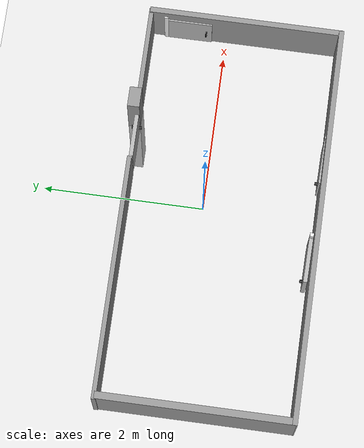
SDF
<sdf version="1.7">
 <world name="room-6-doors">
  <light name="sun" type="directional">
   <pose>0 0 10 0 -0 0</pose>
   <diffuse>0.8 0.8 0.8 1</diffuse>
   <specular>0.2 0.2 0.2 1</specular>
   <attenuation>
    <range>1000</range>
    <constant>0.9</constant>
    <linear>0.01</linear>
    <quadratic>0.001</quadratic>
   </attenuation>
   <direction>-0.5 0.1 -0.9</direction>
   <spot><inner_angle>0</inner_angle><outer_angle>0</outer_angle><falloff>0</falloff></spot>
  </light>
  <model name="ground_plane">
   <static>1</static>
   <link name="link">
    <collision name="collision">
     <geometry><plane><normal>0 0 1</normal><size>100 100</size></plane></geometry>
     <surface>
      <contact><collide_bitmask>65535</collide_bitmask></contact>
      <friction><ode><mu>100</mu><mu2>50</mu2></ode></friction>
     </surface>
    </collision>
    <visual name="visual">
     <cast_shadows>0</cast_shadows>
     <geometry><plane><normal>0 0 1</normal><size>100 100</size></plane></geometry>
     <material>
      <script><uri>file://media/materials/scripts/gazebo.material</uri><name>Gazebo/Grey</name></script>
     </material>
    </visual>
   </link>
  </model>
  <physics type="ode">
   <real_time_update_rate>1000</real_time_update_rate>
   <max_step_size>0.001</max_step_size>
   <real_time_factor>1</real_time_factor>
   <ode>
    <solver>
     <type>quick</type>
     <iters>150</iters>
     <precon_iters>0</precon_iters>
     <sor>1.4</sor>
     <use_dynamic_moi_rescaling>1</use_dynamic_moi_rescaling>
    </solver>
    <constraints>
     <cfm>1e-05</cfm>
     <erp>0.2</erp>
     <contact_max_correcting_vel>2000</contact_max_correcting_vel>
     <contact_surface_layer>0.01</contact_surface_layer>
    </constraints>
   </ode>
  </physics>
  <model name="room-d">
   <link name="link_1">
    <inertial>
     <mass>0.125423</mass>
     <inertia>
      <ixx>0.00613653</ixx>
      <ixy>0</ixy>
      <ixz>0</ixz>
      <iyy>0.100576</iyy>
      <iyz>0</iyz>
      <izz>0.0945024</izz>
     </inertia>
    </inertial>
    <pose>-1.175 0.95466 -0.024889 0 -0 0</pose>
    <gravity>0</gravity>
    <visual name="visual">
     <geometry><box><size>3.00643 0.054903 0.764268</size></box></geometry>
     <material>
      <lighting>1</lighting>
      <script><uri>file://media/materials/scripts/gazebo.material</uri><name>Gazebo/Grey</name></script>
      <shader type="pixel"><normal_map>__default__</normal_map></shader>
     </material>
    </visual>
    <collision name="collision">
     <geometry><box><size>3.00643 0.054903 0.764268</size></box></geometry>
     <surface>
      <friction>
       <ode><mu>1</mu><mu2>1</mu2><fdir1>0 0 0</fdir1><slip1>0</slip1><slip2>0</slip2></ode>
       <torsional>
        <coefficient>1</coefficient>
        <patch_radius>0</patch_radius>
        <surface_radius>0</surface_radius>
        <use_patch_radius>1</use_patch_radius>
        <ode><slip>0</slip></ode>
       </torsional>
      </friction>
      <bounce><restitution_coefficient>0</restitution_coefficient><threshold>1e+06</threshold></bounce>
      <contact>
       <collide_bitmask>16</collide_bitmask>
       <ode>
        <soft_cfm>0</soft_cfm>
        <soft_erp>0.2</soft_erp>
        <kp>1e+13</kp>
        <kd>1</kd>
        <max_vel>0.01</max_vel>
        <min_depth>0</min_depth>
       </ode>
       <bullet>
        <split_impulse>1</split_impulse>
        <split_impulse_penetration_threshold>-0.01</split_impulse_penetration_threshold>
        <soft_cfm>0</soft_cfm>
        <soft_erp>0.2</soft_erp>
        <kp>1e+13</kp>
        <kd>1</kd>
       </bullet>
      </contact>
     </surface>
    </collision>
   </link>
   <link name="link_2">
    <inertial>
     <mass>0.0462245</mass>
     <inertia>
      <ixx>0.00191101</ixx>
      <ixy>0</ixy>
      <ixz>0</ixz>
      <iyy>0.00744204</iyy>
      <iyz>0</iyz>
      <izz>0.00555423</izz>
     </inertia>
    </inertial>
    <pose>1.69085 0.952934 -0.055322 0 -0 0</pose>
    <visual name="visual">
     <geometry><box><size>1.19953 0.054866 0.702206</size></box></geometry>
     <material>
      <lighting>1</lighting>
      <script><uri>file://media/materials/scripts/gazebo.material</uri><name>Gazebo/Grey</name></script>
      <shader type="pixel"/>
     </material>
    </visual>
    <collision name="collision">
     <geometry><box><size>1.19953 0.054866 0.702206</size></box></geometry>
     <surface>
      <friction>
       <ode><mu>1</mu><mu2>1</mu2><fdir1>0 0 0</fdir1><slip1>0</slip1><slip2>0</slip2></ode>
       <torsional>
        <coefficient>1</coefficient>
        <patch_radius>0</patch_radius>
        <surface_radius>0</surface_radius>
        <use_patch_radius>1</use_patch_radius>
        <ode><slip>0</slip></ode>
       </torsional>
      </friction>
      <bounce><restitution_coefficient>0</restitution_coefficient><threshold>1e+06</threshold></bounce>
      <contact>
       <collide_bitmask>16</collide_bitmask>
       <ode>
        <soft_cfm>0</soft_cfm>
        <soft_erp>0.2</soft_erp>
        <kp>1e+13</kp>
        <kd>1</kd>
        <max_vel>0.01</max_vel>
        <min_depth>0</min_depth>
       </ode>
       <bullet>
        <split_impulse>1</split_impulse>
        <split_impulse_penetration_threshold>-0.01</split_impulse_penetration_threshold>
        <soft_cfm>0</soft_cfm>
        <soft_erp>0.2</soft_erp>
        <kp>1e+13</kp>
        <kd>1</kd>
       </bullet>
      </contact>
     </surface>
    </collision>
   </link>
   <link name="link_4">
    <inertial>
     <mass>0.119228</mass>
     <inertia>
      <ixx>0.0635032</ixx>
      <ixy>0</ixy>
      <ixz>0</ixz>
      <iyy>0.0053794</iyy>
      <iyz>0</iyz>
      <izz>0.0582137</izz>
     </inertia>
    </inertial>
    <pose>2.26979 -0.239646 -0.040087 0 -0 0</pose>
    <visual name="visual">
     <geometry><box><size>0.067282 2.41962 0.732733</size></box></geometry>
     <material>
      <lighting>1</lighting>
      <script><uri>file://media/materials/scripts/gazebo.material</uri><name>Gazebo/Grey</name></script>
      <shader type="pixel"/>
     </material>
    </visual>
    <collision name="collision">
     <geometry><box><size>0.067282 2.41962 0.732733</size></box></geometry>
     <surface>
      <friction>
       <ode><mu>1</mu><mu2>1</mu2><fdir1>0 0 0</fdir1><slip1>0</slip1><slip2>0</slip2></ode>
       <torsional>
        <coefficient>1</coefficient>
        <patch_radius>0</patch_radius>
        <surface_radius>0</surface_radius>
        <use_patch_radius>1</use_patch_radius>
        <ode><slip>0</slip></ode>
       </torsional>
      </friction>
      <bounce><restitution_coefficient>0</restitution_coefficient><threshold>1e+06</threshold></bounce>
      <contact>
       <collide_bitmask>16</collide_bitmask>
       <ode>
        <soft_cfm>0</soft_cfm>
        <soft_erp>0.2</soft_erp>
        <kp>1e+13</kp>
        <kd>1</kd>
        <max_vel>0.01</max_vel>
        <min_depth>0</min_depth>
       </ode>
       <bullet>
        <split_impulse>1</split_impulse>
        <split_impulse_penetration_threshold>-0.01</split_impulse_penetration_threshold>
        <soft_cfm>0</soft_cfm>
        <soft_erp>0.2</soft_erp>
        <kp>1e+13</kp>
        <kd>1</kd>
       </bullet>
      </contact>
     </surface>
    </collision>
   </link>
   <link name="link_5">
    <inertial>
     <mass>0.239127</mass>
     <inertia>
      <ixx>0.0121759</ixx>
      <ixy>0</ixy>
      <ixz>0</ixz>
      <iyy>0.500678</iyy>
      <iyz>0</iyz>
      <izz>0.488656</izz>
     </inertia>
    </inertial>
    <pose>-0.192505 -1.42291 -0.023103 0 -0 0</pose>
    <visual name="visual">
     <geometry><box><size>4.95158 0.062118 0.779203</size></box></geometry>
     <material>
      <lighting>1</lighting>
      <script><uri>file://media/materials/scripts/gazebo.material</uri><name>Gazebo/Grey</name></script>
      <shader type="pixel"/>
     </material>
    </visual>
    <collision name="collision">
     <geometry><box><size>4.95158 0.062118 0.779203</size></box></geometry>
     <surface>
      <friction>
       <ode><mu>1</mu><mu2>1</mu2><fdir1>0 0 0</fdir1><slip1>0</slip1><slip2>0</slip2></ode>
       <torsional>
        <coefficient>1</coefficient>
        <patch_radius>0</patch_radius>
        <surface_radius>0</surface_radius>
        <use_patch_radius>1</use_patch_radius>
        <ode><slip>0</slip></ode>
       </torsional>
      </friction>
      <bounce><restitution_coefficient>0</restitution_coefficient><threshold>1e+06</threshold></bounce>
      <contact>
       <collide_bitmask>16</collide_bitmask>
       <ode>
        <soft_cfm>0</soft_cfm>
        <soft_erp>0.2</soft_erp>
        <kp>1e+13</kp>
        <kd>1</kd>
        <max_vel>0.01</max_vel>
        <min_depth>0</min_depth>
       </ode>
       <bullet>
        <split_impulse>1</split_impulse>
        <split_impulse_penetration_threshold>-0.01</split_impulse_penetration_threshold>
        <soft_cfm>0</soft_cfm>
        <soft_erp>0.2</soft_erp>
        <kp>1e+13</kp>
        <kd>1</kd>
       </bullet>
      </contact>
     </surface>
    </collision>
   </link>
   <link name="link_6">
    <inertial>
     <mass>0.162063</mass>
     <inertia>
      <ixx>0.0854528</ixx>
      <ixy>0</ixy>
      <ixz>0</ixz>
      <iyy>0.00812041</iyy>
      <iyz>0</iyz>
      <izz>0.0775411</izz>
     </inertia>
    </inertial>
    <pose>-2.62446 -0.245042 -0.024165 0 -0 0</pose>
    <visual name="visual">
     <geometry><box><size>0.087916 2.39454 0.770421</size></box></geometry>
     <material>
      <lighting>1</lighting>
      <script><uri>file://media/materials/scripts/gazebo.material</uri><name>Gazebo/Grey</name></script>
      <shader type="pixel"/>
     </material>
    </visual>
    <collision name="collision">
     <geometry><box><size>0.087916 2.39454 0.770421</size></box></geometry>
     <surface>
      <friction>
       <ode><mu>1</mu><mu2>1</mu2><fdir1>0 0 0</fdir1><slip1>0</slip1><slip2>0</slip2></ode>
       <torsional>
        <coefficient>1</coefficient>
        <patch_radius>0</patch_radius>
        <surface_radius>0</surface_radius>
        <use_patch_radius>1</use_patch_radius>
        <ode><slip>0</slip></ode>
       </torsional>
      </friction>
      <bounce><restitution_coefficient>0</restitution_coefficient><threshold>1e+06</threshold></bounce>
      <contact>
       <collide_bitmask>16</collide_bitmask>
       <ode>
        <soft_cfm>0</soft_cfm>
        <soft_erp>0.2</soft_erp>
        <kp>1e+13</kp>
        <kd>1</kd>
        <max_vel>0.01</max_vel>
        <min_depth>0</min_depth>
       </ode>
       <bullet>
        <split_impulse>1</split_impulse>
        <split_impulse_penetration_threshold>-0.01</split_impulse_penetration_threshold>
        <soft_cfm>0</soft_cfm>
        <soft_erp>0.2</soft_erp>
        <kp>1e+13</kp>
        <kd>1</kd>
       </bullet>
      </contact>
     </surface>
    </collision>
   </link>
   <static>1</static>
   <pose>0 0 0.42 0 -0 0</pose>
  </model>
  <model name="door-model">
   <link name="door">
    <inertial>
     <mass>20</mass>
     <inertia>
      <ixx>4.53808</ixx>
      <ixy>0</ixy>
      <ixz>0</ixz>
      <iyy>4.54003</iyy>
      <iyz>0</iyz>
      <izz>0.0512722</izz>
     </inertia>
    </inertial>
    <gravity>0</gravity>
    <visual name="visual">
     <geometry><mesh><uri>model://door-model/./Door.dae</uri><scale>0.001 0.001 0.001</scale></mesh></geometry>
    </visual>
    <collision name="collision">
     <geometry><mesh><uri>model://door-model/./Door.dae</uri><scale>0.001 0.001 0.001</scale></mesh></geometry>
     <surface>
      <friction>
       <ode><mu>1</mu><mu2>1</mu2><fdir1>0 0 0</fdir1><slip1>0</slip1><slip2>0</slip2></ode>
       <torsional>
        <coefficient>1</coefficient>
        <patch_radius>0</patch_radius>
        <surface_radius>0</surface_radius>
        <use_patch_radius>1</use_patch_radius>
        <ode><slip>0</slip></ode>
       </torsional>
      </friction>
      <bounce><restitution_coefficient>0</restitution_coefficient><threshold>1e+06</threshold></bounce>
      <contact>
       <collide_without_contact>0</collide_without_contact>
       <collide_without_contact_bitmask>1</collide_without_contact_bitmask>
       <collide_bitmask>1</collide_bitmask>
       <ode>
        <soft_cfm>0</soft_cfm>
        <soft_erp>0.2</soft_erp>
        <kp>1e+13</kp>
        <kd>1</kd>
        <max_vel>0.01</max_vel>
        <min_depth>0</min_depth>
       </ode>
       <bullet>
        <split_impulse>1</split_impulse>
        <split_impulse_penetration_threshold>-0.01</split_impulse_penetration_threshold>
        <soft_cfm>0</soft_cfm>
        <soft_erp>0.2</soft_erp>
        <kp>1e+13</kp>
        <kd>1</kd>
       </bullet>
      </contact>
     </surface>
    </collision>
   </link>
   <link name="pole">
    <inertial>
     <mass>100</mass>
     <inertia>
      <ixx>0.001</ixx>
      <ixy>0.001</ixy>
      <ixz>0.001</ixz>
      <iyy>0.001</iyy>
      <iyz>0.001</iyz>
      <izz>0.001</izz>
     </inertia>
    </inertial>
    <pose>-0.02632 0 0.308096 0 -0 0</pose>
    <gravity>0</gravity>
    <kinematic>1</kinematic>
    <visual name="visual">
     <geometry><box><size>0.048276 0.0462 0.625074</size></box></geometry>
     <material>
      <lighting>1</lighting>
      <script><uri>file://media/materials/scripts/gazebo.material</uri><name>Gazebo/White</name></script>
      <ambient>1 1 1 1</ambient>
     </material>
    </visual>
    <collision name="collision">
     <geometry><box><size>0.048 0.046201 0.625074</size></box></geometry>
     <surface>
      <friction>
       <ode><mu>1</mu><mu2>1</mu2><fdir1>0 0 0</fdir1><slip1>0</slip1><slip2>0</slip2></ode>
       <torsional>
        <coefficient>1</coefficient>
        <patch_radius>0</patch_radius>
        <surface_radius>0</surface_radius>
        <use_patch_radius>1</use_patch_radius>
        <ode><slip>0</slip></ode>
       </torsional>
      </friction>
      <bounce><restitution_coefficient>0</restitution_coefficient><threshold>1e+06</threshold></bounce>
      <contact>
       <collide_without_contact>0</collide_without_contact>
       <collide_without_contact_bitmask>1</collide_without_contact_bitmask>
       <collide_bitmask>1</collide_bitmask>
       <ode>
        <soft_cfm>0</soft_cfm>
        <soft_erp>0.2</soft_erp>
        <kp>1e+13</kp>
        <kd>1</kd>
        <max_vel>0.01</max_vel>
        <min_depth>0</min_depth>
       </ode>
       <bullet>
        <split_impulse>1</split_impulse>
        <split_impulse_penetration_threshold>-0.01</split_impulse_penetration_threshold>
        <soft_cfm>0</soft_cfm>
        <soft_erp>0.2</soft_erp>
        <kp>1e+13</kp>
        <kd>1</kd>
       </bullet>
      </contact>
     </surface>
    </collision>
   </link>
   <joint name="hinge" type="revolute">
    <parent>pole</parent>
    <child>door</child>
    <pose>0 0 0.3 0 -0 0</pose>
    <axis>
     <xyz>0 0 1</xyz>
     <limit><lower>-1.74533</lower><upper>1.74533</upper><effort>3900</effort><velocity>0.62</velocity></limit>
     <dynamics>
      <spring_reference>0</spring_reference>
      <spring_stiffness>0</spring_stiffness>
      <damping>0.1</damping>
      <friction>0.1</friction>
     </dynamics>
    </axis>
    <physics>
     <ode><limit><cfm>0</cfm><erp>0.2</erp></limit><suspension><cfm>0</cfm><erp>0.2</erp></suspension></ode>
    </physics>
   </joint>
   <static>0</static>
   <pose>0.382321 0.953288 0.02 0 -0 0</pose>
  </model>
  <scene><ambient>0.4 0.4 0.4 1</ambient><background>0.7 0.7 0.7 1</background><shadows>1</shadows></scene>
  <gravity>0 0 -9.8</gravity>
  <magnetic_field>6e-06 2.3e-05 -4.2e-05</magnetic_field>
  <atmosphere type="adiabatic"/>
  <spherical_coordinates>
   <surface_model>EARTH_WGS84</surface_model>
   <latitude_deg>0</latitude_deg>
   <longitude_deg>0</longitude_deg>
   <elevation>0</elevation>
   <heading_deg>0</heading_deg>
  </spherical_coordinates>
  <model name="gap-filler-grey">
   <pose>2.48231 4.09085 -1.73102 0 -0 0</pose>
   <link name="Wall_4">
    <collision name="Wall_4_Collision">
     <geometry><box><size>0.25 0.15 2.5</size></box></geometry>
     <pose>0 0 1.25 0 -0 0</pose>
    </collision>
    <visual name="Wall_4_Visual">
     <pose>0 0 1.25 0 -0 0</pose>
     <geometry><box><size>0.25 0.15 2.5</size></box></geometry>
     <material>
      <script><uri>file://media/materials/scripts/gazebo.material</uri><name>Gazebo/Grey</name></script>
      <shader type="pixel"><normal_map>__default__</normal_map></shader>
      <ambient>1 1 1 1</ambient>
     </material>
     <meta><layer>0</layer></meta>
    </visual>
    <pose>-1.38938 -3.0906 0 0 -0 3.14159</pose>
   </link>
   <static>1</static>
  </model>
  <model name="door-model_clone">
   <link name="door">
    <inertial>
     <mass>20</mass>
     <inertia>
      <ixx>4.53808</ixx>
      <ixy>0</ixy>
      <ixz>0</ixz>
      <iyy>4.54003</iyy>
      <iyz>0</iyz>
      <izz>0.0512722</izz>
     </inertia>
    </inertial>
    <gravity>0</gravity>
    <visual name="visual">
     <geometry><mesh><uri>model://door-model/./Door.dae</uri><scale>0.001 0.001 0.001</scale></mesh></geometry>
    </visual>
    <collision name="collision">
     <geometry><mesh><uri>model://door-model/./Door.dae</uri><scale>0.001 0.001 0.001</scale></mesh></geometry>
     <surface>
      <friction>
       <ode><mu>1</mu><mu2>1</mu2><fdir1>0 0 0</fdir1><slip1>0</slip1><slip2>0</slip2></ode>
       <torsional>
        <coefficient>1</coefficient>
        <patch_radius>0</patch_radius>
        <surface_radius>0</surface_radius>
        <use_patch_radius>1</use_patch_radius>
        <ode><slip>0</slip></ode>
       </torsional>
      </friction>
      <bounce><restitution_coefficient>0</restitution_coefficient><threshold>1e+06</threshold></bounce>
      <contact>
       <collide_without_contact>0</collide_without_contact>
       <collide_without_contact_bitmask>1</collide_without_contact_bitmask>
       <collide_bitmask>1</collide_bitmask>
       <ode>
        <soft_cfm>0</soft_cfm>
        <soft_erp>0.2</soft_erp>
        <kp>1e+13</kp>
        <kd>1</kd>
        <max_vel>0.01</max_vel>
        <min_depth>0</min_depth>
       </ode>
       <bullet>
        <split_impulse>1</split_impulse>
        <split_impulse_penetration_threshold>-0.01</split_impulse_penetration_threshold>
        <soft_cfm>0</soft_cfm>
        <soft_erp>0.2</soft_erp>
        <kp>1e+13</kp>
        <kd>1</kd>
       </bullet>
      </contact>
     </surface>
    </collision>
   </link>
   <link name="pole">
    <inertial>
     <mass>100</mass>
     <inertia>
      <ixx>0.001</ixx>
      <ixy>0.001</ixy>
      <ixz>0.001</ixz>
      <iyy>0.001</iyy>
      <iyz>0.001</iyz>
      <izz>0.001</izz>
     </inertia>
    </inertial>
    <pose>-0.02632 0 0.308096 0 -0 0</pose>
    <gravity>0</gravity>
    <kinematic>1</kinematic>
    <visual name="visual">
     <geometry><box><size>0.048276 0.0462 0.625074</size></box></geometry>
     <material>
      <lighting>1</lighting>
      <script><uri>file://media/materials/scripts/gazebo.material</uri><name>Gazebo/White</name></script>
      <ambient>1 1 1 1</ambient>
     </material>
    </visual>
    <collision name="collision">
     <geometry><box><size>0.048 0.046201 0.625074</size></box></geometry>
     <surface>
      <friction>
       <ode><mu>1</mu><mu2>1</mu2><fdir1>0 0 0</fdir1><slip1>0</slip1><slip2>0</slip2></ode>
       <torsional>
        <coefficient>1</coefficient>
        <patch_radius>0</patch_radius>
        <surface_radius>0</surface_radius>
        <use_patch_radius>1</use_patch_radius>
        <ode><slip>0</slip></ode>
       </torsional>
      </friction>
      <bounce><restitution_coefficient>0</restitution_coefficient><threshold>1e+06</threshold></bounce>
      <contact>
       <collide_without_contact>0</collide_without_contact>
       <collide_without_contact_bitmask>1</collide_without_contact_bitmask>
       <collide_bitmask>1</collide_bitmask>
       <ode>
        <soft_cfm>0</soft_cfm>
        <soft_erp>0.2</soft_erp>
        <kp>1e+13</kp>
        <kd>1</kd>
        <max_vel>0.01</max_vel>
        <min_depth>0</min_depth>
       </ode>
       <bullet>
        <split_impulse>1</split_impulse>
        <split_impulse_penetration_threshold>-0.01</split_impulse_penetration_threshold>
        <soft_cfm>0</soft_cfm>
        <soft_erp>0.2</soft_erp>
        <kp>1e+13</kp>
        <kd>1</kd>
       </bullet>
      </contact>
     </surface>
    </collision>
   </link>
   <joint name="hinge" type="revolute">
    <parent>pole</parent>
    <child>door</child>
    <pose>0 0 0.3 0 -0 0</pose>
    <axis>
     <xyz>0 0 1</xyz>
     <limit><lower>-1.74533</lower><upper>1.74533</upper><effort>3900</effort><velocity>0.62</velocity></limit>
     <dynamics>
      <spring_reference>0</spring_reference>
      <spring_stiffness>0</spring_stiffness>
      <damping>0.1</damping>
      <friction>0.1</friction>
     </dynamics>
    </axis>
    <physics>
     <ode><limit><cfm>0</cfm><erp>0.2</erp></limit><suspension><cfm>0</cfm><erp>0.2</erp></suspension></ode>
    </physics>
   </joint>
   <static>0</static>
   <pose>-2.58915 -0.108116 0.02 0 -0 1.55115</pose>
  </model>
  <model name="door-model_clone_clone">
   <link name="door">
    <inertial>
     <mass>20</mass>
     <inertia>
      <ixx>4.53808</ixx>
      <ixy>0</ixy>
      <ixz>0</ixz>
      <iyy>4.54003</iyy>
      <iyz>0</iyz>
      <izz>0.0512722</izz>
     </inertia>
    </inertial>
    <gravity>0</gravity>
    <visual name="visual">
     <geometry><mesh><uri>model://door-model/./Door.dae</uri><scale>0.001 0.001 0.001</scale></mesh></geometry>
    </visual>
    <collision name="collision">
     <geometry><mesh><uri>model://door-model/./Door.dae</uri><scale>0.001 0.001 0.001</scale></mesh></geometry>
     <surface>
      <friction>
       <ode><mu>1</mu><mu2>1</mu2><fdir1>0 0 0</fdir1><slip1>0</slip1><slip2>0</slip2></ode>
       <torsional>
        <coefficient>1</coefficient>
        <patch_radius>0</patch_radius>
        <surface_radius>0</surface_radius>
        <use_patch_radius>1</use_patch_radius>
        <ode><slip>0</slip></ode>
       </torsional>
      </friction>
      <bounce><restitution_coefficient>0</restitution_coefficient><threshold>1e+06</threshold></bounce>
      <contact>
       <collide_without_contact>0</collide_without_contact>
       <collide_without_contact_bitmask>1</collide_without_contact_bitmask>
       <collide_bitmask>1</collide_bitmask>
       <ode>
        <soft_cfm>0</soft_cfm>
        <soft_erp>0.2</soft_erp>
        <kp>1e+13</kp>
        <kd>1</kd>
        <max_vel>0.01</max_vel>
        <min_depth>0</min_depth>
       </ode>
       <bullet>
        <split_impulse>1</split_impulse>
        <split_impulse_penetration_threshold>-0.01</split_impulse_penetration_threshold>
        <soft_cfm>0</soft_cfm>
        <soft_erp>0.2</soft_erp>
        <kp>1e+13</kp>
        <kd>1</kd>
       </bullet>
      </contact>
     </surface>
    </collision>
   </link>
   <link name="pole">
    <inertial>
     <mass>100</mass>
     <inertia>
      <ixx>0.001</ixx>
      <ixy>0.001</ixy>
      <ixz>0.001</ixz>
      <iyy>0.001</iyy>
      <iyz>0.001</iyz>
      <izz>0.001</izz>
     </inertia>
    </inertial>
    <pose>-0.02632 0 0.308096 0 -0 0</pose>
    <gravity>0</gravity>
    <kinematic>1</kinematic>
    <visual name="visual">
     <geometry><box><size>0.048276 0.0462 0.625074</size></box></geometry>
     <material>
      <lighting>1</lighting>
      <script><uri>file://media/materials/scripts/gazebo.material</uri><name>Gazebo/White</name></script>
      <ambient>1 1 1 1</ambient>
     </material>
    </visual>
    <collision name="collision">
     <geometry><box><size>0.048 0.046201 0.625074</size></box></geometry>
     <surface>
      <friction>
       <ode><mu>1</mu><mu2>1</mu2><fdir1>0 0 0</fdir1><slip1>0</slip1><slip2>0</slip2></ode>
       <torsional>
        <coefficient>1</coefficient>
        <patch_radius>0</patch_radius>
        <surface_radius>0</surface_radius>
        <use_patch_radius>1</use_patch_radius>
        <ode><slip>0</slip></ode>
       </torsional>
      </friction>
      <bounce><restitution_coefficient>0</restitution_coefficient><threshold>1e+06</threshold></bounce>
      <contact>
       <collide_without_contact>0</collide_without_contact>
       <collide_without_contact_bitmask>1</collide_without_contact_bitmask>
       <collide_bitmask>1</collide_bitmask>
       <ode>
        <soft_cfm>0</soft_cfm>
        <soft_erp>0.2</soft_erp>
        <kp>1e+13</kp>
        <kd>1</kd>
        <max_vel>0.01</max_vel>
        <min_depth>0</min_depth>
       </ode>
       <bullet>
        <split_impulse>1</split_impulse>
        <split_impulse_penetration_threshold>-0.01</split_impulse_penetration_threshold>
        <soft_cfm>0</soft_cfm>
        <soft_erp>0.2</soft_erp>
        <kp>1e+13</kp>
        <kd>1</kd>
       </bullet>
      </contact>
     </surface>
    </collision>
   </link>
   <joint name="hinge" type="revolute">
    <parent>pole</parent>
    <child>door</child>
    <pose>0 0 0.3 0 -0 0</pose>
    <axis>
     <xyz>0 0 1</xyz>
     <limit><lower>-1.74533</lower><upper>1.74533</upper><effort>3900</effort><velocity>0.62</velocity></limit>
     <dynamics>
      <spring_reference>0</spring_reference>
      <spring_stiffness>0</spring_stiffness>
      <damping>0.1</damping>
      <friction>0.1</friction>
     </dynamics>
    </axis>
    <physics>
     <ode><limit><cfm>0</cfm><erp>0.2</erp></limit><suspension><cfm>0</cfm><erp>0.2</erp></suspension></ode>
    </physics>
   </joint>
   <static>0</static>
   <pose>-0.346962 -1.36235 0.02 0 -0 3.12252</pose>
  </model>
  <model name="door-model_clone_clone_clone">
   <link name="door">
    <inertial>
     <mass>20</mass>
     <inertia>
      <ixx>4.53808</ixx>
      <ixy>0</ixy>
      <ixz>0</ixz>
      <iyy>4.54003</iyy>
      <iyz>0</iyz>
      <izz>0.0512722</izz>
     </inertia>
    </inertial>
    <gravity>0</gravity>
    <visual name="visual">
     <geometry><mesh><uri>model://door-model/./Door.dae</uri><scale>0.001 0.001 0.001</scale></mesh></geometry>
    </visual>
    <collision name="collision">
     <geometry><mesh><uri>model://door-model/./Door.dae</uri><scale>0.001 0.001 0.001</scale></mesh></geometry>
     <surface>
      <friction>
       <ode><mu>1</mu><mu2>1</mu2><fdir1>0 0 0</fdir1><slip1>0</slip1><slip2>0</slip2></ode>
       <torsional>
        <coefficient>1</coefficient>
        <patch_radius>0</patch_radius>
        <surface_radius>0</surface_radius>
        <use_patch_radius>1</use_patch_radius>
        <ode><slip>0</slip></ode>
       </torsional>
      </friction>
      <bounce><restitution_coefficient>0</restitution_coefficient><threshold>1e+06</threshold></bounce>
      <contact>
       <collide_without_contact>0</collide_without_contact>
       <collide_without_contact_bitmask>1</collide_without_contact_bitmask>
       <collide_bitmask>1</collide_bitmask>
       <ode>
        <soft_cfm>0</soft_cfm>
        <soft_erp>0.2</soft_erp>
        <kp>1e+13</kp>
        <kd>1</kd>
        <max_vel>0.01</max_vel>
        <min_depth>0</min_depth>
       </ode>
       <bullet>
        <split_impulse>1</split_impulse>
        <split_impulse_penetration_threshold>-0.01</split_impulse_penetration_threshold>
        <soft_cfm>0</soft_cfm>
        <soft_erp>0.2</soft_erp>
        <kp>1e+13</kp>
        <kd>1</kd>
       </bullet>
      </contact>
     </surface>
    </collision>
   </link>
   <link name="pole">
    <inertial>
     <mass>100</mass>
     <inertia>
      <ixx>0.001</ixx>
      <ixy>0.001</ixy>
      <ixz>0.001</ixz>
      <iyy>0.001</iyy>
      <iyz>0.001</iyz>
      <izz>0.001</izz>
     </inertia>
    </inertial>
    <pose>-0.02632 0 0.308096 0 -0 0</pose>
    <gravity>0</gravity>
    <kinematic>1</kinematic>
    <visual name="visual">
     <geometry><box><size>0.048276 0.0462 0.625074</size></box></geometry>
     <material>
      <lighting>1</lighting>
      <script><uri>file://media/materials/scripts/gazebo.material</uri><name>Gazebo/White</name></script>
      <ambient>1 1 1 1</ambient>
     </material>
    </visual>
    <collision name="collision">
     <geometry><box><size>0.048 0.046201 0.625074</size></box></geometry>
     <surface>
      <friction>
       <ode><mu>1</mu><mu2>1</mu2><fdir1>0 0 0</fdir1><slip1>0</slip1><slip2>0</slip2></ode>
       <torsional>
        <coefficient>1</coefficient>
        <patch_radius>0</patch_radius>
        <surface_radius>0</surface_radius>
        <use_patch_radius>1</use_patch_radius>
        <ode><slip>0</slip></ode>
       </torsional>
      </friction>
      <bounce><restitution_coefficient>0</restitution_coefficient><threshold>1e+06</threshold></bounce>
      <contact>
       <collide_without_contact>0</collide_without_contact>
       <collide_without_contact_bitmask>1</collide_without_contact_bitmask>
       <collide_bitmask>1</collide_bitmask>
       <ode>
        <soft_cfm>0</soft_cfm>
        <soft_erp>0.2</soft_erp>
        <kp>1e+13</kp>
        <kd>1</kd>
        <max_vel>0.01</max_vel>
        <min_depth>0</min_depth>
       </ode>
       <bullet>
        <split_impulse>1</split_impulse>
        <split_impulse_penetration_threshold>-0.01</split_impulse_penetration_threshold>
        <soft_cfm>0</soft_cfm>
        <soft_erp>0.2</soft_erp>
        <kp>1e+13</kp>
        <kd>1</kd>
       </bullet>
      </contact>
     </surface>
    </collision>
   </link>
   <joint name="hinge" type="revolute">
    <parent>pole</parent>
    <child>door</child>
    <pose>0 0 0.3 0 -0 0</pose>
    <axis>
     <xyz>0 0 1</xyz>
     <limit><lower>-1.74533</lower><upper>1.74533</upper><effort>3900</effort><velocity>0.62</velocity></limit>
     <dynamics>
      <spring_reference>0</spring_reference>
      <spring_stiffness>0</spring_stiffness>
      <damping>0.1</damping>
      <friction>0.1</friction>
     </dynamics>
    </axis>
    <physics>
     <ode><limit><cfm>0</cfm><erp>0.2</erp></limit><suspension><cfm>0</cfm><erp>0.2</erp></suspension></ode>
    </physics>
   </joint>
   <static>0</static>
   <pose>0.910527 -1.40427 0.02 0 -0 3.12252</pose>
  </model>
  <model name="door-model_clone_clone_clone_clone">
   <link name="door">
    <inertial>
     <mass>20</mass>
     <inertia>
      <ixx>4.53808</ixx>
      <ixy>0</ixy>
      <ixz>0</ixz>
      <iyy>4.54003</iyy>
      <iyz>0</iyz>
      <izz>0.0512722</izz>
     </inertia>
    </inertial>
    <gravity>0</gravity>
    <visual name="visual">
     <geometry><mesh><uri>model://door-model/./Door.dae</uri><scale>0.001 0.001 0.001</scale></mesh></geometry>
    </visual>
    <collision name="collision">
     <geometry><mesh><uri>model://door-model/./Door.dae</uri><scale>0.001 0.001 0.001</scale></mesh></geometry>
     <surface>
      <friction>
       <ode><mu>1</mu><mu2>1</mu2><fdir1>0 0 0</fdir1><slip1>0</slip1><slip2>0</slip2></ode>
       <torsional>
        <coefficient>1</coefficient>
        <patch_radius>0</patch_radius>
        <surface_radius>0</surface_radius>
        <use_patch_radius>1</use_patch_radius>
        <ode><slip>0</slip></ode>
       </torsional>
      </friction>
      <bounce><restitution_coefficient>0</restitution_coefficient><threshold>1e+06</threshold></bounce>
      <contact>
       <collide_without_contact>0</collide_without_contact>
       <collide_without_contact_bitmask>1</collide_without_contact_bitmask>
       <collide_bitmask>1</collide_bitmask>
       <ode>
        <soft_cfm>0</soft_cfm>
        <soft_erp>0.2</soft_erp>
        <kp>1e+13</kp>
        <kd>1</kd>
        <max_vel>0.01</max_vel>
        <min_depth>0</min_depth>
       </ode>
       <bullet>
        <split_impulse>1</split_impulse>
        <split_impulse_penetration_threshold>-0.01</split_impulse_penetration_threshold>
        <soft_cfm>0</soft_cfm>
        <soft_erp>0.2</soft_erp>
        <kp>1e+13</kp>
        <kd>1</kd>
       </bullet>
      </contact>
     </surface>
    </collision>
   </link>
   <link name="pole">
    <inertial>
     <mass>100</mass>
     <inertia>
      <ixx>0.001</ixx>
      <ixy>0.001</ixy>
      <ixz>0.001</ixz>
      <iyy>0.001</iyy>
      <iyz>0.001</iyz>
      <izz>0.001</izz>
     </inertia>
    </inertial>
    <pose>-0.02632 0 0.308096 0 -0 0</pose>
    <gravity>0</gravity>
    <kinematic>1</kinematic>
    <visual name="visual">
     <geometry><box><size>0.048276 0.0462 0.625074</size></box></geometry>
     <material>
      <lighting>1</lighting>
      <script><uri>file://media/materials/scripts/gazebo.material</uri><name>Gazebo/White</name></script>
      <ambient>1 1 1 1</ambient>
     </material>
    </visual>
    <collision name="collision">
     <geometry><box><size>0.048 0.046201 0.625074</size></box></geometry>
     <surface>
      <friction>
       <ode><mu>1</mu><mu2>1</mu2><fdir1>0 0 0</fdir1><slip1>0</slip1><slip2>0</slip2></ode>
       <torsional>
        <coefficient>1</coefficient>
        <patch_radius>0</patch_radius>
        <surface_radius>0</surface_radius>
        <use_patch_radius>1</use_patch_radius>
        <ode><slip>0</slip></ode>
       </torsional>
      </friction>
      <bounce><restitution_coefficient>0</restitution_coefficient><threshold>1e+06</threshold></bounce>
      <contact>
       <collide_without_contact>0</collide_without_contact>
       <collide_without_contact_bitmask>1</collide_without_contact_bitmask>
       <collide_bitmask>1</collide_bitmask>
       <ode>
        <soft_cfm>0</soft_cfm>
        <soft_erp>0.2</soft_erp>
        <kp>1e+13</kp>
        <kd>1</kd>
        <max_vel>0.01</max_vel>
        <min_depth>0</min_depth>
       </ode>
       <bullet>
        <split_impulse>1</split_impulse>
        <split_impulse_penetration_threshold>-0.01</split_impulse_penetration_threshold>
        <soft_cfm>0</soft_cfm>
        <soft_erp>0.2</soft_erp>
        <kp>1e+13</kp>
        <kd>1</kd>
       </bullet>
      </contact>
     </surface>
    </collision>
   </link>
   <joint name="hinge" type="revolute">
    <parent>pole</parent>
    <child>door</child>
    <pose>0 0 0.3 0 -0 0</pose>
    <axis>
     <xyz>0 0 1</xyz>
     <limit><lower>-1.74533</lower><upper>1.74533</upper><effort>3900</effort><velocity>0.62</velocity></limit>
     <dynamics>
      <spring_reference>0</spring_reference>
      <spring_stiffness>0</spring_stiffness>
      <damping>0.1</damping>
      <friction>0.1</friction>
     </dynamics>
    </axis>
    <physics>
     <ode><limit><cfm>0</cfm><erp>0.2</erp></limit><suspension><cfm>0</cfm><erp>0.2</erp></suspension></ode>
    </physics>
   </joint>
   <static>0</static>
   <pose>2.2412 0.734416 0.02 0 -0 -1.56656</pose>
  </model>
 </world>
</sdf>
